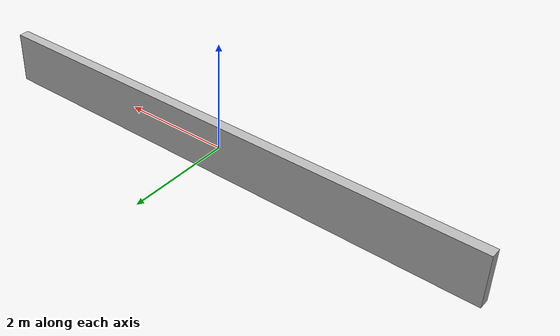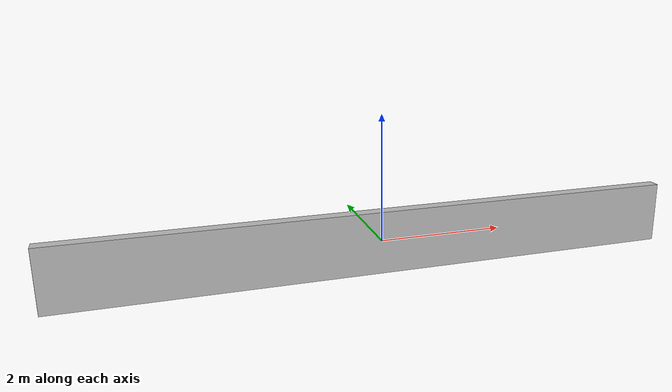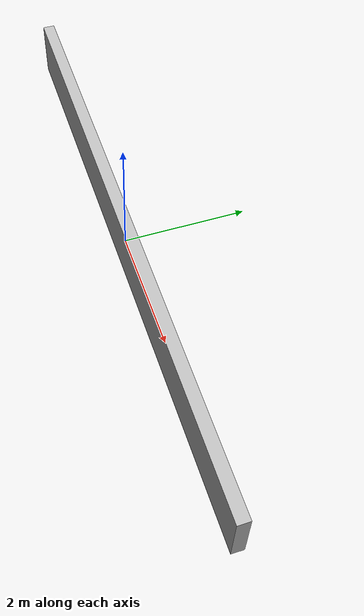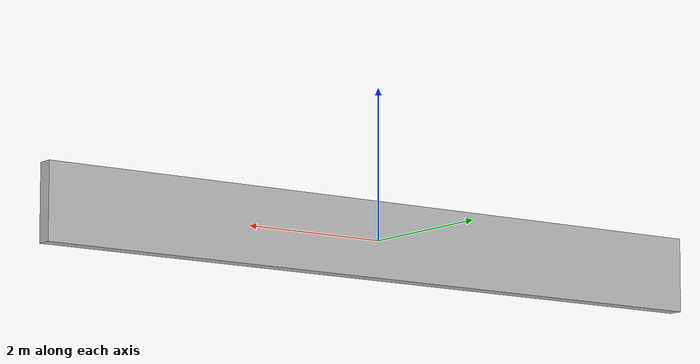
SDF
<?xml version='1.0'?>
<sdf version='1.6'>
  <model name='room3_wall2'>
    <static>true</static>
    <link name='link'>
      <collision name='collision'>
        <geometry><box><size>10.0 0.2 1.0</size></box></geometry>
      </collision>
      <visual name='visual'>
        <geometry><box><size>10.0 0.2 1.0</size></box></geometry>
      </visual>
    </link>
  </model>
</sdf>
